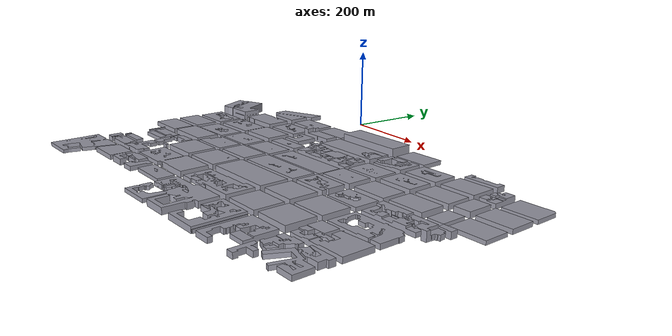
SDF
<?xml version="1.6"?>
<sdf version="1.8">
  <model name="buildings_mesh">
    <static>true</static>
    <link name="link">
      <visual name="visual">
        <geometry>
          <mesh><uri>model://buildings_mesh/meshes/buildings.obj</uri></mesh>
        </geometry>
        <material>
          <diffuse>0.6 0.6 0.65 1</diffuse>
          <ambient>0.4 0.4 0.45 1</ambient>
        </material>
      </visual>
      <collision name="collision">
        <geometry>
          <mesh><uri>model://buildings_mesh/meshes/buildings.obj</uri></mesh>
        </geometry>
      </collision>
    </link>
  </model>
</sdf>
